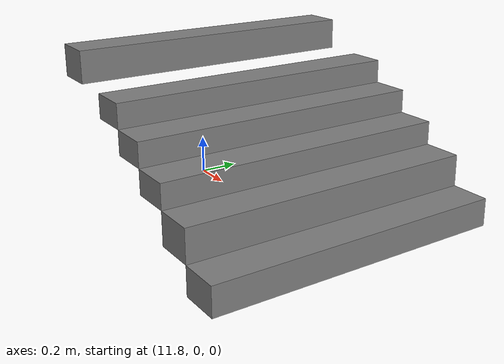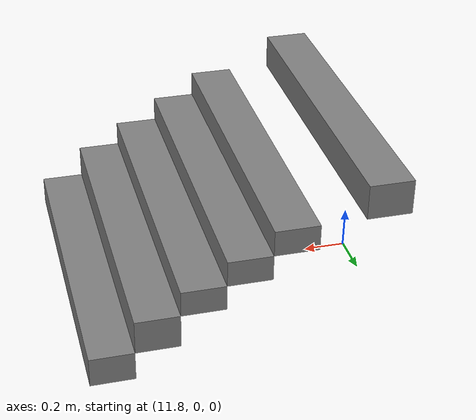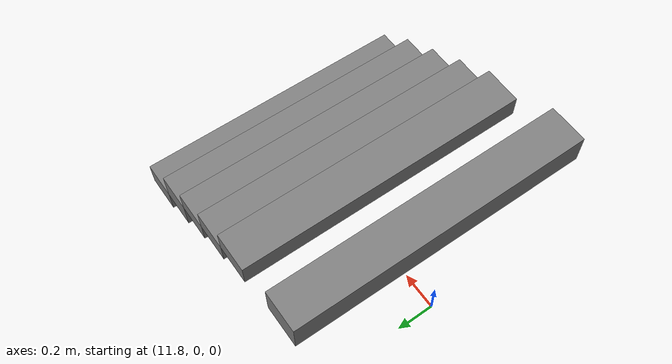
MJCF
<mujoco model="go2 scene">
  <statistic center="0 0 0.1" extent="0.8" />

  <visual>
    <headlight diffuse="0.6 0.6 0.6" ambient="0.3 0.3 0.3" specular="0 0 0" />
    <rgba haze="0.15 0.25 0.35 1" />
    <global azimuth="-130" elevation="-20" />
  </visual>

  <asset>
    <texture type="skybox" builtin="gradient" rgb1="0.3 0.5 0.7" rgb2="0 0 0" width="512" height="3072" />
  </asset>

  <worldbody>
  <geom pos="13.1 2.4492935982947065e-17 0.07" type="box" size="0.1 0.75 0.07" quat="6.123233995736766e-17 0.0 0.0 1.0" /><geom pos="12.9 4.898587196589413e-17 0.22000000000000003" type="box" size="0.1 0.75 0.08" quat="6.123233995736766e-17 0.0 0.0 1.0" /><geom pos="12.7 7.34788079488412e-17 0.36000000000000004" type="box" size="0.1 0.75 0.06" quat="6.123233995736766e-17 0.0 0.0 1.0" /><geom pos="12.5 9.797174393178826e-17 0.48000000000000004" type="box" size="0.1 0.75 0.06" quat="6.123233995736766e-17 0.0 0.0 1.0" /><geom pos="12.3 1.2246467991473532e-16 0.6000000000000001" type="box" size="0.1 0.75 0.06" quat="6.123233995736766e-17 0.0 0.0 1.0" /><geom pos="11.9 1.4695761589768238e-16 0.7400000000000001" type="box" size="0.1 0.75 0.08" quat="6.123233995736766e-17 0.0 0.0 1.0" /></worldbody>
</mujoco>
